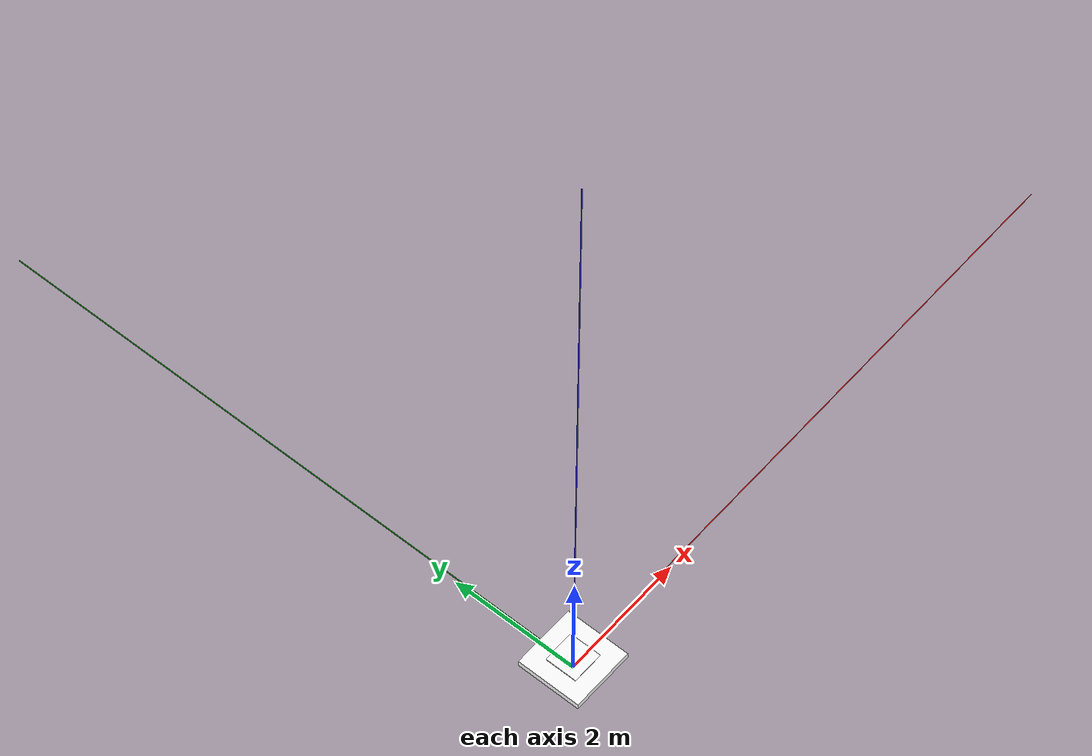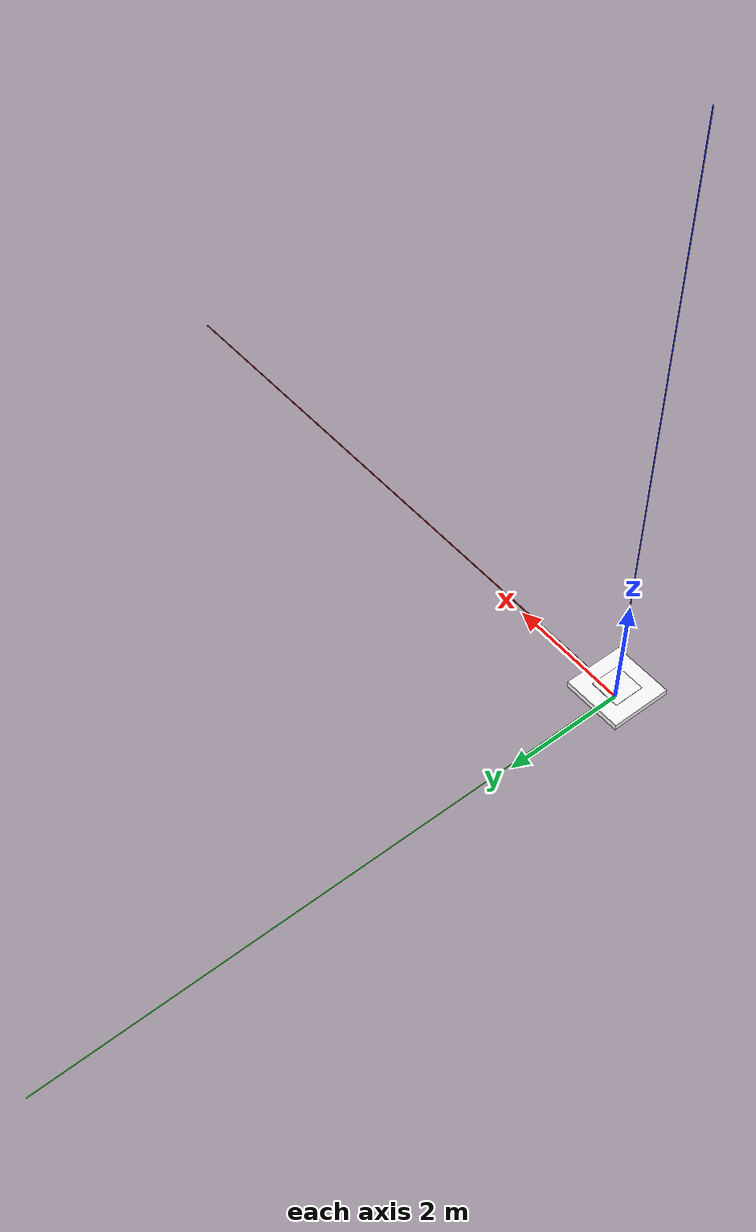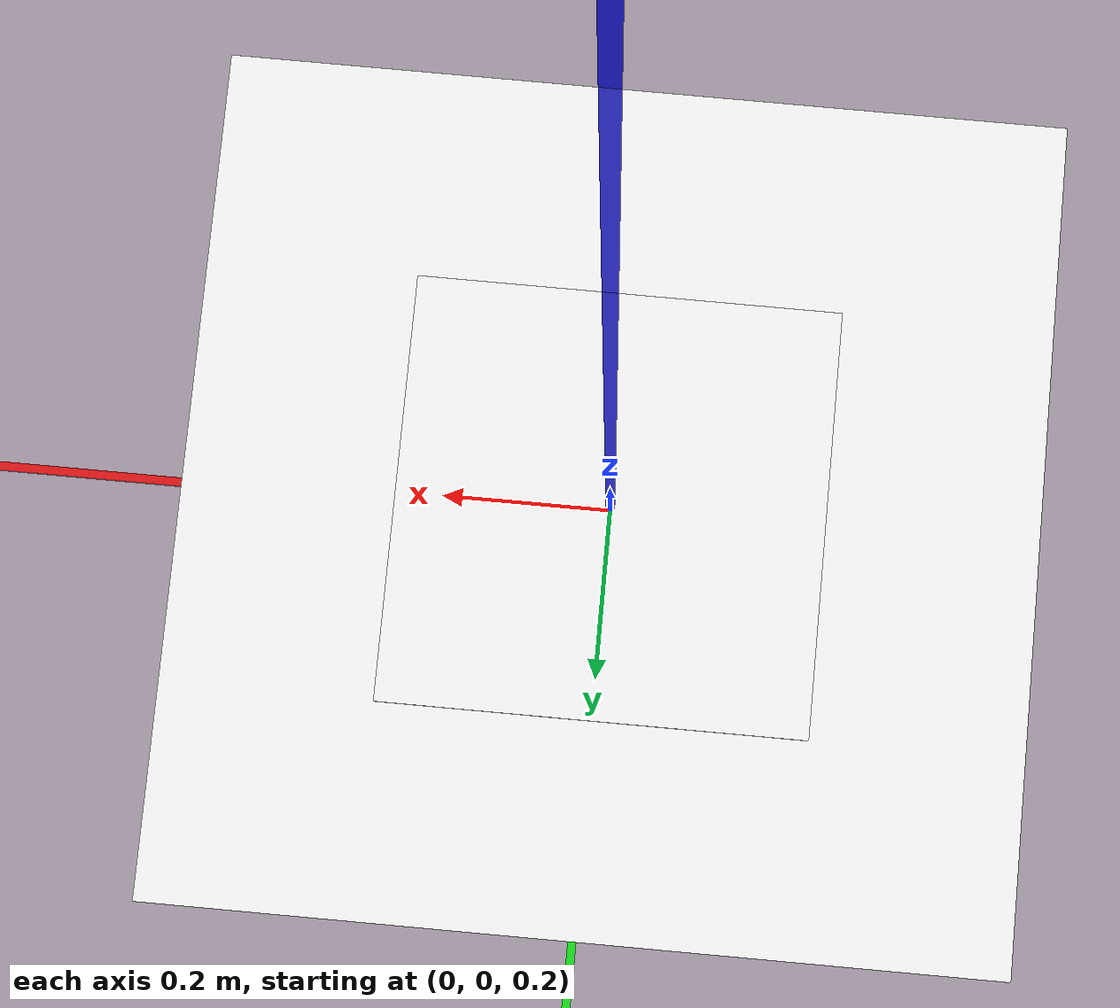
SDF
<sdf version="1.9">
 <world name="iris_runway_aruco">
  <physics name="1ms" type="ode">
   <max_step_size>0.001</max_step_size>
   <real_time_factor>1.0</real_time_factor>
  </physics>
  <plugin filename="gz-sim-physics-system" name="gz::sim::systems::Physics"/>
  <plugin filename="gz-sim-sensors-system" name="gz::sim::systems::Sensors">
   <render_engine>ogre2</render_engine>
  </plugin>
  <plugin filename="gz-sim-user-commands-system" name="gz::sim::systems::UserCommands"/>
  <plugin filename="gz-sim-scene-broadcaster-system" name="gz::sim::systems::SceneBroadcaster"/>
  <plugin filename="gz-sim-imu-system" name="gz::sim::systems::Imu"/>
  <plugin filename="gz-sim-navsat-system" name="gz::sim::systems::NavSat"/>
  <scene><ambient>1.0 1.0 1.0</ambient><background>0.8 0.8 0.8</background></scene>
  <spherical_coordinates>
   <latitude_deg>-35.363262</latitude_deg>
   <longitude_deg>149.165237</longitude_deg>
   <elevation>584</elevation>
   <heading_deg>0</heading_deg>
   <surface_model>EARTH_WGS84</surface_model>
  </spherical_coordinates>
  <light type="directional" name="sun">
   <pose>0 0 10 0 0 0</pose>
   <diffuse>0.8 0.8 0.8 1</diffuse>
   <specular>0.8 0.8 0.8 1</specular>
   <attenuation>
    <range>1000</range>
    <constant>0.9</constant>
    <linear>0.01</linear>
    <quadratic>0.001</quadratic>
   </attenuation>
   <direction>-0.5 0.1 -0.9</direction>
  </light>
  <model name="axes">
   <static>1</static>
   <link name="link">
    <visual name="r">
     <cast_shadows>0</cast_shadows>
     <pose>5 0 0.1 0 0 0</pose>
     <geometry><box><size>10 0.01 0.01</size></box></geometry>
     <material>
      <ambient>1 0 0 0.8</ambient>
      <diffuse>1 0 0 0.8</diffuse>
      <emissive>1 0 0 0.8</emissive>
      <specular>0.5 0.5 0.5 0.8</specular>
     </material>
    </visual>
    <visual name="g">
     <cast_shadows>0</cast_shadows>
     <pose>0 5 0.1 0 0 0</pose>
     <geometry><box><size>0.01 10 0.01</size></box></geometry>
     <material>
      <ambient>0 1 0 0.8</ambient>
      <diffuse>0 1 0 0.8</diffuse>
      <emissive>0 1 0 0.8</emissive>
      <specular>0.5 0.5 0.5 0.8</specular>
     </material>
    </visual>
    <visual name="b">
     <cast_shadows>0</cast_shadows>
     <pose>0 0 5.1 0 0 0</pose>
     <geometry><box><size>0.01 0.01 10</size></box></geometry>
     <material>
      <ambient>0 0 1 0.8</ambient>
      <diffuse>0 0 1 0.8</diffuse>
      <emissive>0 0 1 0.8</emissive>
      <specular>0.5 0.5 0.5 0.8</specular>
     </material>
    </visual>
    <sensor name="navsat_sensor" type="navsat"><always_on>1</always_on><update_rate>1</update_rate></sensor>
   </link>
  </model>
  <include>
   <uri>model://moving_platform</uri>
   <pose degrees="true">0 0 0 0 0 0</pose>
   <name>moving_platform</name>
  </include>
  <plugin filename="libDataLoggerPlugin.so" name="DataLoggerPlugin">
   <log_frequency>50</log_frequency>
   <output_directory>/tmp/drone_sim_logs</output_directory>
   <entities>
    <entity><name>iris_with_fixed_camera</name><type>model</type></entity>
    <entity><name>moving_platform</name><type>model</type></entity>
   </entities>
  </plugin>
 </world>
</sdf>

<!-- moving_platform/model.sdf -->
<sdf version="1.9">
  <model name="platform_model">
    <link name="base_link">
      <visual name="platform_visual">
        <geometry>
          <box>
            <size>1 1 0.1</size>
          </box>
        </geometry>
        <material>
            <ambient>1 1 1 1</ambient>
            <diffuse>1 1 1 1</diffuse>
            <specular>0.1 0.1 0.1 1</specular>
        </material>
      </visual>
      <visual name='tag_visual'>
        <pose>0 0 0.05 0 0 0</pose>
        <geometry>
          <box>
            <size>0.5 0.5 0.02</size>
          </box>
        </geometry>
        <material>
          <ambient>1 1 1 1</ambient>
          <diffuse>1 1 1 1</diffuse>
          <specular>0.5 0.5 0.5 1</specular>
          <pbr>
            <metal>
              <albedo_map>model://moving_platform/arucotag.png</albedo_map>
            </metal>
          </pbr>
        </material>
      </visual>
      <!-- Coordinate axes for platform -->
      <collision name="platform_collision">
        <geometry>
          <box>
            <size>1 1 0.1</size>
          </box>
        </geometry>
      </collision>
      <pose degrees='true'>0 0 0.2 0 0 0</pose>
      <inertial>
          <mass>10000</mass>
          <inertia>
              <ixx>10000</ixx>
              <iyy>10000</iyy>
              <izz>10000</izz>
          </inertia>
      </inertial>
      <sensor name="navsat_sensor" type="navsat">
        <always_on>1</always_on>
        <update_rate>30</update_rate>
      </sensor>
    </link>
    <plugin filename="gz-sim-odometry-publisher-system"
            name="gz::sim::systems::OdometryPublisher">
      <dimensions>3</dimensions>
      <odom_publish_frequency>60.0</odom_publish_frequency>
    </plugin>
    <!-- Velocity control plugin -->
    <plugin
      filename="gz-sim-velocity-control-system"
      name="gz::sim::systems::VelocityControl">
      <!-- vels for circle moving y=-1 ang_z=-0.2 v = wr, w = v/r -->
      <!-- r = 1.5, for v = 0.5 -> w = 0.5/1.5 = 0.33333, for v = 0.2 -> w = 0.2/1.5 = 0.13333 -->
      <initial_linear>0 0 0</initial_linear>
      <initial_angular>0 0 0.0</initial_angular>
      <lin_vel_min>-1 -1 -1</lin_vel_min>
      <lin_vel_max>1 1 1</lin_vel_max>
      <ang_vel_min>-1 -1 -1</ang_vel_min>
      <ang_vel_max>1 1 1</ang_vel_max>
      <link_name>platform_link</link_name>  <!-- Explicitly set the link -->
    </plugin>
  </model>
</sdf>
